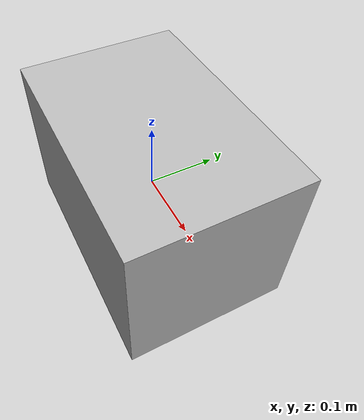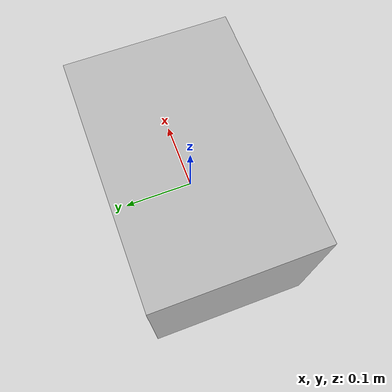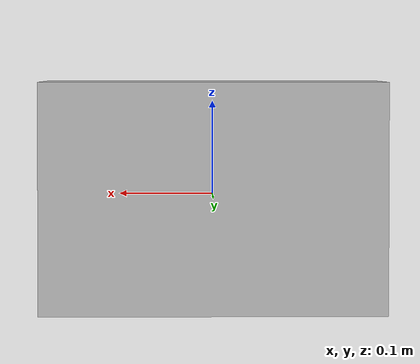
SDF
<?xml version="1.0"?>
<sdf version="1.7">

<model name="physicar_box_obstacle">
    <link name="link">
      <inertial>
        <mass>1.0</mass>
        <inertia> <!-- inertias are tricky to compute -->
          <!-- http://gazebosim.org/tutorials?tut=inertia&cat=build_robot -->
          <ixx>0.083</ixx>       <!-- for a box: ixx = 0.083 * mass * (y*y + z*z) -->
          <ixy>0.0</ixy>         <!-- for a box: ixy = 0 -->
          <ixz>0.0</ixz>         <!-- for a box: ixz = 0 -->
          <iyy>0.083</iyy>       <!-- for a box: iyy = 0.083 * mass * (x*x + z*z) -->
          <iyz>0.0</iyz>         <!-- for a box: iyz = 0 -->
          <izz>0.083</izz>       <!-- for a box: izz = 0.083 * mass * (x*x + y*y) -->
        </inertia>
      </inertial>

      <collision name='collision'>
        <pose frame="">0 0 0 0 0 0</pose>
        <geometry>
          <box><size>0.362 0.242 0.242</size></box>
        </geometry>
        <surface>
        <contact>
          <!-- Make sure the collision between botcar and any of the obstacles is not considered -->
          <!-- https://classic.gazebosim.org/tutorials?tut=collide_bitmask&cat=physics -->
          <collide_bitmask>0x7FFF</collide_bitmask>
        </contact>
        </surface>
      </collision>
      <pose frame="">0 0 0 0 0 0</pose>

      <visual name="visual_box">
        <pose frame="">0 0 0 0 0 0</pose>
        <geometry>
          <mesh>
            <scale>1.0 1.0 1.0</scale>
            <uri>model://meshes/physicar_box_obstacle/physicar_box_obstacle.dae</uri>
          </mesh>
        </geometry>
      </visual>

    </link>
  </model>
</sdf>
